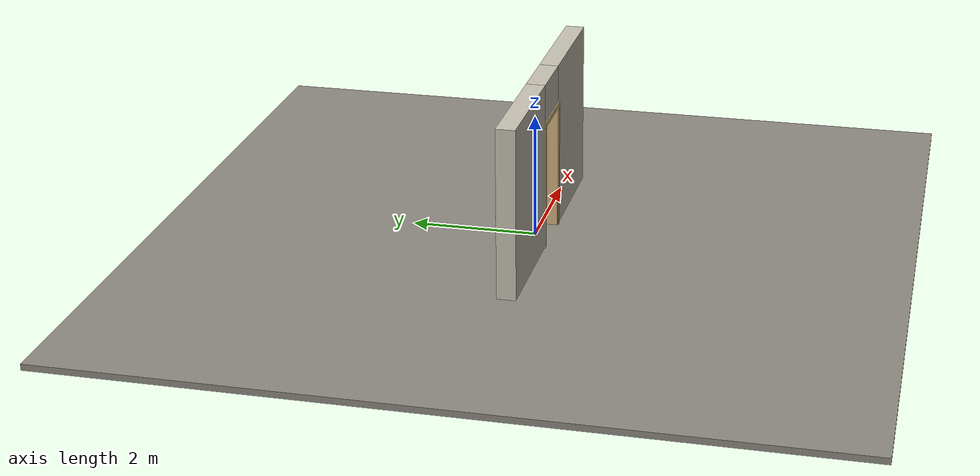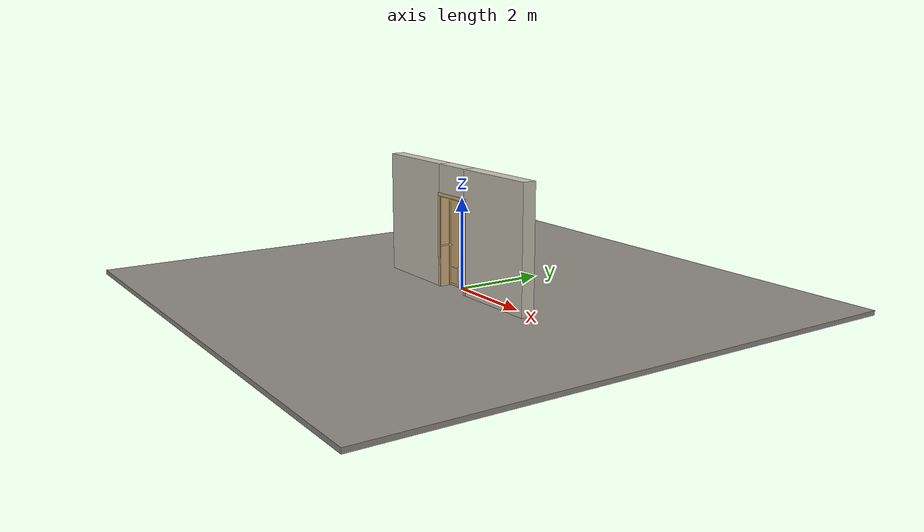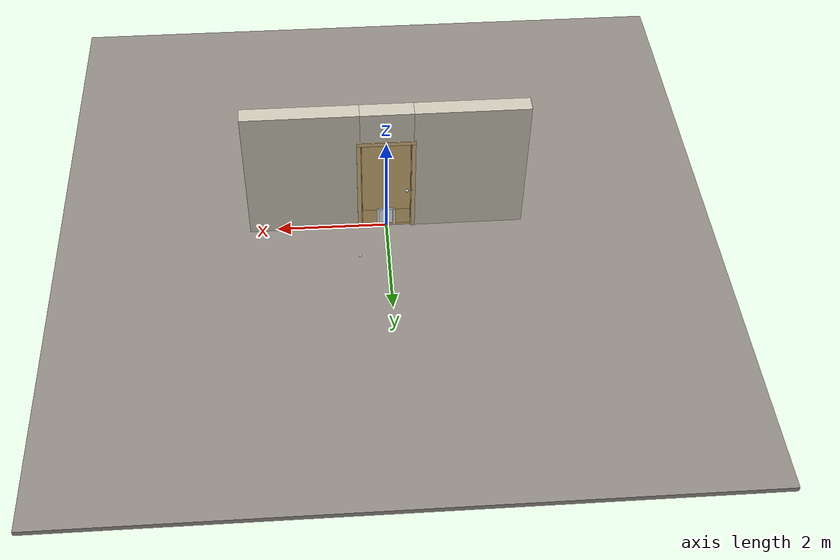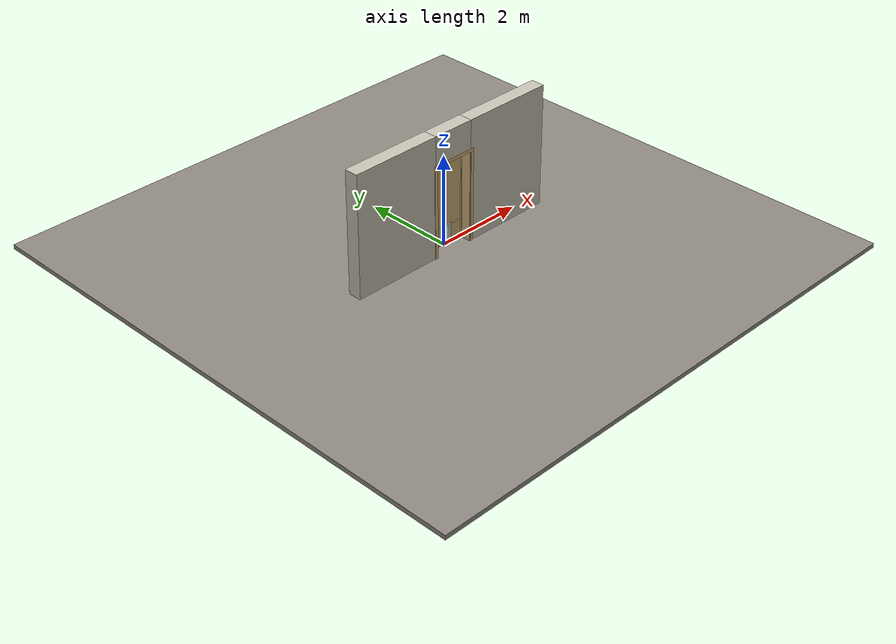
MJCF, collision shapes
<?xml version="1.0" ?>
<mujoco model="db0785_swing_single_full">
  <compiler angle="radian" meshdir="../../hardware" texturedir="../../textures" autolimits="true" inertiafromgeom="false"/>
  <option timestep="0.002" integrator="implicitfast" cone="elliptic" impratio="10" noslip_iterations="3">
    <flag multiccd="enable"/>
  </option>
  <size memory="16M"/>
  <default>
    <geom condim="4" solref="0.005 1" solimp="0.95 0.99 0.001"/>
    <joint solreflimit="0.005 1" solimplimit="0.95 0.99 0.001"/>
    <tendon solreflimit="0.005 1"/>
    <equality solref="0.002 1"/>
  </default>
  <visual>
    <headlight ambient="0.4 0.4 0.4" diffuse="0.7 0.7 0.7" specular="0.2 0.2 0.2"/>
    <quality shadowsize="4096"/>
    <map znear="0.01" zfar="60"/>
  </visual>
  <asset>
    <mesh name="hinge_7678ceaa91" file="hinge_7678ceaa91.obj"/>
    <mesh name="hinge_jamb_24fdb06e8a" file="hinge_jamb_24fdb06e8a.obj"/>
    <mesh name="knob_98a7916ed0" file="knob_98a7916ed0.obj"/>
    <material name="mat_floor" rgba="0.55 0.53 0.5 1" specular="0.2" shininess="0.15" reflectance="0"/>
    <material name="mat_wall" rgba="0.78 0.76 0.7 1" specular="0.2" shininess="0.1" reflectance="0"/>
    <material name="mat_hinge" rgba="0.55 0.56 0.58 1" specular="0.8" shininess="0.55" reflectance="0.4"/>
    <material name="mat_leaf" rgba="0.8 0.68 0.45 1" specular="0.2" shininess="0.5" reflectance="0"/>
    <material name="mat_leaf_louver" rgba="0.68 0.578 0.383 1" specular="0.2" shininess="0.4" reflectance="0"/>
    <material name="mat_op_glass_clear" rgba="0.85 0.92 0.95 0.25" specular="0.2" shininess="0.95" reflectance="0.1"/>
    <material name="mat_trim" rgba="0.85 0.66 0.3 1" specular="0.8" shininess="0.75" reflectance="0.4"/>
    <material name="mat_bolt" rgba="0.85 0.66 0.3 1" specular="0.8" shininess="0.75" reflectance="0.4"/>
    <material name="mat_frame" rgba="0.82 0.7 0.5 1" specular="0.2" shininess="0.45" reflectance="0"/>
    <material name="mat_stop" rgba="0.9 0.9 0.92 1" specular="0.8" shininess="0.9" reflectance="0.4"/>
    <material name="mat_petframe" rgba="0.92 0.92 0.9 1" specular="0.2" shininess="0.6" reflectance="0"/>
    <material name="mat_petflap" rgba="0.9 0.92 0.95 0.3" specular="0.2" shininess="0.9" reflectance="0.1"/>
    <texture name="skybox" type="skybox" builtin="gradient" rgb1="0.6 0.7 0.85" rgb2="0.9 0.92 0.95" width="256" height="256"/>
  </asset>
  <worldbody>
    <light name="sun" pos="1.5 -2.5 4" dir="-0.3 0.5 -0.8" directional="true" diffuse="0.8 0.8 0.8" specular="0.3 0.3 0.3" castshadow="true"/>
    <light name="fill" pos="-1.5 2.5 3" dir="0.3 -0.5 -0.7" directional="true" diffuse="0.35 0.35 0.4" castshadow="false"/>
    <camera name="robot_view" pos="0 -2.619125 1.698475" xyaxes="1 0 0 0 0.26963 0.962964" fovy="52"/>
    <camera name="far_view" pos="0 2.377125 1.698475" xyaxes="-1 0 0 0 -0.26963 0.962964" fovy="52"/>
    <camera name="iso" pos="-1.898575 -2.219425 2.098175" xyaxes="0.741536 -0.670913 0 0.242917 0.268487 0.932151" fovy="46"/>
    <camera name="detail_handle" pos="-0.191 -0.867 1.194" xyaxes="0.97561 0.219512 0 -0.070934 0.315262 0.94635" fovy="38"/>
    <geom name="floor" type="box" size="6 6 0.05" pos="0 0 -0.05" material="mat_floor" group="0" contype="1" conaffinity="1" friction="0.8 0.005 0.0001" density="2400"/>
    <geom name="wall_left" type="box" size="1.0075 0.15 1.35" pos="-1.4925 -0.121 1.35" material="mat_wall" group="0" contype="1" conaffinity="1" friction="0.6 0.005 0.0001" density="800"/>
    <geom name="wall_right" type="box" size="1.0225 0.15 1.35" pos="1.4775 -0.121 1.35" material="mat_wall" group="0" contype="1" conaffinity="1" friction="0.6 0.005 0.0001" density="800"/>
    <geom name="wall_header" type="box" size="0.47 0.15 0.3265" pos="-0.015 -0.121 2.3735" material="mat_wall" group="0" contype="1" conaffinity="1" friction="0.6 0.005 0.0001" density="800"/>
    <geom name="hinge_0_jamb" type="mesh" mesh="hinge_jamb_24fdb06e8a" pos="0.433 0.029 0.259" quat="0 0 0 1" material="mat_hinge" group="1" contype="0" conaffinity="0" density="7850"/>
    <geom name="hinge_1_jamb" type="mesh" mesh="hinge_jamb_24fdb06e8a" pos="0.433 0.029 0.9963" quat="0 0 0 1" material="mat_hinge" group="1" contype="0" conaffinity="0" density="7850"/>
    <geom name="hinge_2_jamb" type="mesh" mesh="hinge_jamb_24fdb06e8a" pos="0.433 0.029 1.8036" quat="0 0 0 1" material="mat_hinge" group="1" contype="0" conaffinity="0" density="7850"/>
    <geom name="jamb_hinge" type="box" size="0.0095 0.15 0.999" pos="0.4455 -0.121 0.999" material="mat_frame" group="0" contype="1" conaffinity="1" friction="0.6 0.005 0.0001" density="400"/>
    <geom name="strike_914_wall_n" type="box" size="0.0245 0.131575 0.0167" pos="-0.4605 -0.139425 0.914" material="mat_frame" group="0" contype="1" conaffinity="1" friction="0.6 0.005 0.0001" density="400"/>
    <geom name="strike_914_wall_p" type="box" size="0.0245 0.008 0.0167" pos="-0.4605 0.01585 0.914" material="mat_frame" group="0" contype="1" conaffinity="1" friction="0.6 0.005 0.0001" density="400"/>
    <geom name="strike_914_ramp" type="box" size="0.0245 0.01649 0.0167" pos="-0.465136 0.028673 0.914" quat="0.977148 0 0 0.212558" material="mat_frame" group="0" contype="1" conaffinity="1" friction="0.12 0.005 0.0001" density="400"/>
    <geom name="strike_914_back" type="box" size="0.01615 0.00785 0.0167" pos="-0.46885 0 0.914" material="mat_frame" group="0" contype="1" conaffinity="1" friction="0.6 0.005 0.0001" density="400"/>
    <geom name="jamb_strike_0" type="box" size="0.0245 0.15 0.44865" pos="-0.4605 -0.121 0.44865" material="mat_frame" group="0" contype="1" conaffinity="1" friction="0.6 0.005 0.0001" density="400"/>
    <geom name="jamb_strike_1" type="box" size="0.0245 0.15 0.53365" pos="-0.4605 -0.121 1.46435" material="mat_frame" group="0" contype="1" conaffinity="1" friction="0.6 0.005 0.0001" density="400"/>
    <geom name="jamb_head" type="box" size="0.47 0.15 0.0095" pos="-0.015 -0.121 2.0075" material="mat_frame" group="0" contype="1" conaffinity="1" friction="0.6 0.005 0.0001" density="400"/>
    <geom name="head_stud" type="box" size="0.47 0.15 0.015" pos="-0.015 -0.121 2.032" material="mat_wall" group="0" contype="1" conaffinity="1" friction="0.6 0.005 0.0001" density="500"/>
    <geom name="stop_hinge" type="box" size="0.0055 0.016 0.999" pos="0.4305 -0.0385 0.999" material="mat_frame" group="0" contype="1" conaffinity="1" friction="0.6 0.005 0.0001" density="400"/>
    <geom name="stop_strike" type="box" size="0.0055 0.016 0.999" pos="-0.4305 -0.0385 0.999" material="mat_frame" group="0" contype="1" conaffinity="1" friction="0.6 0.005 0.0001" density="400"/>
    <geom name="stop_head" type="box" size="0.436 0.016 0.0055" pos="0 -0.0385 1.9925" material="mat_frame" group="0" contype="1" conaffinity="1" friction="0.6 0.005 0.0001" density="400"/>
    <geom name="casing_l_n" type="box" size="0.035 0.008 1.0085" pos="-0.485 -0.279 0.999" material="mat_frame" group="2" contype="0" conaffinity="0" density="400"/>
    <geom name="casing_r_n" type="box" size="0.035 0.008 1.0085" pos="0.485 -0.279 0.999" material="mat_frame" group="2" contype="0" conaffinity="0" density="400"/>
    <geom name="casing_h_n" type="box" size="0.52 0.008 0.035" pos="0 -0.279 2.047" material="mat_frame" group="2" contype="0" conaffinity="0" density="400"/>
    <geom name="casing_l_p" type="box" size="0.035 0.008 1.0085" pos="-0.485 0.037 0.999" material="mat_frame" group="2" contype="0" conaffinity="0" density="400"/>
    <geom name="casing_r_p" type="box" size="0.035 0.008 1.0085" pos="0.485 0.037 0.999" material="mat_frame" group="2" contype="0" conaffinity="0" density="400"/>
    <geom name="casing_h_p" type="box" size="0.52 0.008 0.035" pos="0 0.037 2.047" material="mat_frame" group="2" contype="0" conaffinity="0" density="400"/>
    <geom name="floor_stop_dome" type="sphere" size="0.025" pos="0.516931 0.758862 0" material="mat_stop" group="0" contype="1" conaffinity="1" friction="0.6 0.005 0.0001" density="7000"/>
    <site name="approach_point" pos="0 -1.5 0" quat="1 0 0 0" size="0.05" rgba="0.2 0.9 0.2 0.5" group="4"/>
    <site name="goal_point" pos="0 1.5 0" quat="1 0 0 0" size="0.05" rgba="0.2 0.9 0.2 0.5" group="4"/>
    <site name="door_plane_center" pos="0 0 0.999" quat="1 0 0 0" size="0.02" rgba="0.2 0.9 0.2 0.5" group="4"/>
    <body name="leaf_riser" pos="0.436 0 0">
      <inertial pos="-0.003 0.029 0.055" mass="0.174012" quat="-0.5 0.5 0.5 0.5" diaginertia="0.000017053 0.00002732 0.00002732"/>
      <joint name="leaf_rise" type="slide" axis="0 0 1" limited="true" range="0 0.0176" damping="1" armature="0.5"/>
      <geom name="leaf_riser_marker" type="cylinder" size="0.014 0.018" pos="-0.003 0.029 0.055" material="mat_hinge" group="1" contype="0" conaffinity="0" density="7850"/>
      <body name="leaf" pos="0 0 0">
        <inertial pos="-0.430464 0.000215 0.996086" mass="54.353505" quat="0.499758 0.500469 -0.499523 0.500249" diaginertia="3.488268714 17.554478952 21.024120237"/>
        <joint name="leaf_hinge" type="hinge" axis="0 0 -1" pos="-0.003 0.029 0" limited="true" range="0 1.658063" damping="0.249771" frictionloss="0.838026" armature="0.02"/>
        <geom name="leaf_slab_below" type="box" size="0.432 0.022 0.0245" pos="-0.435 0 0.0335" material="mat_leaf" group="0" contype="1" conaffinity="1" friction="0.35 0.005 0.0001" density="1"/>
        <geom name="leaf_slab_above" type="box" size="0.432 0.022 0.7818" pos="-0.435 0 1.2018" material="mat_leaf" group="0" contype="1" conaffinity="1" friction="0.35 0.005 0.0001" density="1"/>
        <geom name="leaf_slab_left" type="box" size="0.153 0.022 0.181" pos="-0.714 0 0.239" material="mat_leaf" group="0" contype="1" conaffinity="1" friction="0.35 0.005 0.0001" density="1"/>
        <geom name="leaf_slab_right" type="box" size="0.153 0.022 0.181" pos="-0.156 0 0.239" material="mat_leaf" group="0" contype="1" conaffinity="1" friction="0.35 0.005 0.0001" density="1"/>
        <geom name="leaf_louver_4" type="box" size="0.33696 0.002 0.026388" pos="-0.435 0 0.452387" quat="0.953717 0.300706 0 0" material="mat_leaf_louver" group="1" contype="0" conaffinity="0" density="1"/>
        <geom name="leaf_louver_5" type="box" size="0.33696 0.002 0.026388" pos="-0.435 0 0.50265" quat="0.953717 0.300706 0 0" material="mat_leaf_louver" group="1" contype="0" conaffinity="0" density="1"/>
        <geom name="leaf_louver_6" type="box" size="0.33696 0.002 0.026388" pos="-0.435 0 0.552913" quat="0.953717 0.300706 0 0" material="mat_leaf_louver" group="1" contype="0" conaffinity="0" density="1"/>
        <geom name="leaf_louver_7" type="box" size="0.33696 0.002 0.026388" pos="-0.435 0 0.603175" quat="0.953717 0.300706 0 0" material="mat_leaf_louver" group="1" contype="0" conaffinity="0" density="1"/>
        <geom name="leaf_louver_8" type="box" size="0.33696 0.002 0.026388" pos="-0.435 0 0.653438" quat="0.953717 0.300706 0 0" material="mat_leaf_louver" group="1" contype="0" conaffinity="0" density="1"/>
        <geom name="leaf_louver_9" type="box" size="0.33696 0.002 0.026388" pos="-0.435 0 0.7037" quat="0.953717 0.300706 0 0" material="mat_leaf_louver" group="1" contype="0" conaffinity="0" density="1"/>
        <geom name="leaf_louver_10" type="box" size="0.33696 0.002 0.026388" pos="-0.435 0 0.753963" quat="0.953717 0.300706 0 0" material="mat_leaf_louver" group="1" contype="0" conaffinity="0" density="1"/>
        <geom name="leaf_louver_11" type="box" size="0.33696 0.002 0.026388" pos="-0.435 0 0.804225" quat="0.953717 0.300706 0 0" material="mat_leaf_louver" group="1" contype="0" conaffinity="0" density="1"/>
        <geom name="leaf_louver_12" type="box" size="0.33696 0.002 0.026388" pos="-0.435 0 0.854488" quat="0.953717 0.300706 0 0" material="mat_leaf_louver" group="1" contype="0" conaffinity="0" density="1"/>
        <geom name="leaf_louver_13" type="box" size="0.33696 0.002 0.026388" pos="-0.435 0 0.90475" quat="0.953717 0.300706 0 0" material="mat_leaf_louver" group="1" contype="0" conaffinity="0" density="1"/>
        <geom name="leaf_louver_14" type="box" size="0.33696 0.002 0.026388" pos="-0.435 0 0.955013" quat="0.953717 0.300706 0 0" material="mat_leaf_louver" group="1" contype="0" conaffinity="0" density="1"/>
        <geom name="leaf_louver_15" type="box" size="0.33696 0.002 0.026388" pos="-0.435 0 1.005275" quat="0.953717 0.300706 0 0" material="mat_leaf_louver" group="1" contype="0" conaffinity="0" density="1"/>
        <geom name="leaf_louver_16" type="box" size="0.33696 0.002 0.026388" pos="-0.435 0 1.055538" quat="0.953717 0.300706 0 0" material="mat_leaf_louver" group="1" contype="0" conaffinity="0" density="1"/>
        <geom name="leaf_louver_17" type="box" size="0.33696 0.002 0.026388" pos="-0.435 0 1.105801" quat="0.953717 0.300706 0 0" material="mat_leaf_louver" group="1" contype="0" conaffinity="0" density="1"/>
        <geom name="leaf_louver_18" type="box" size="0.33696 0.002 0.026388" pos="-0.435 0 1.156063" quat="0.953717 0.300706 0 0" material="mat_leaf_louver" group="1" contype="0" conaffinity="0" density="1"/>
        <geom name="leaf_louver_19" type="box" size="0.33696 0.002 0.026388" pos="-0.435 0 1.206326" quat="0.953717 0.300706 0 0" material="mat_leaf_louver" group="1" contype="0" conaffinity="0" density="1"/>
        <geom name="leaf_louver_20" type="box" size="0.33696 0.002 0.026388" pos="-0.435 0 1.256588" quat="0.953717 0.300706 0 0" material="mat_leaf_louver" group="1" contype="0" conaffinity="0" density="1"/>
        <geom name="leaf_louver_21" type="box" size="0.33696 0.002 0.026388" pos="-0.435 0 1.306851" quat="0.953717 0.300706 0 0" material="mat_leaf_louver" group="1" contype="0" conaffinity="0" density="1"/>
        <geom name="leaf_louver_22" type="box" size="0.33696 0.002 0.026388" pos="-0.435 0 1.357113" quat="0.953717 0.300706 0 0" material="mat_leaf_louver" group="1" contype="0" conaffinity="0" density="1"/>
        <geom name="leaf_louver_23" type="box" size="0.33696 0.002 0.026388" pos="-0.435 0 1.407376" quat="0.953717 0.300706 0 0" material="mat_leaf_louver" group="1" contype="0" conaffinity="0" density="1"/>
        <geom name="leaf_louver_24" type="box" size="0.33696 0.002 0.026388" pos="-0.435 0 1.457638" quat="0.953717 0.300706 0 0" material="mat_leaf_louver" group="1" contype="0" conaffinity="0" density="1"/>
        <geom name="leaf_louver_25" type="box" size="0.33696 0.002 0.026388" pos="-0.435 0 1.507901" quat="0.953717 0.300706 0 0" material="mat_leaf_louver" group="1" contype="0" conaffinity="0" density="1"/>
        <geom name="leaf_louver_26" type="box" size="0.33696 0.002 0.026388" pos="-0.435 0 1.558163" quat="0.953717 0.300706 0 0" material="mat_leaf_louver" group="1" contype="0" conaffinity="0" density="1"/>
        <geom name="leaf_louver_27" type="box" size="0.33696 0.002 0.026388" pos="-0.435 0 1.608426" quat="0.953717 0.300706 0 0" material="mat_leaf_louver" group="1" contype="0" conaffinity="0" density="1"/>
        <geom name="leaf_louver_28" type="box" size="0.33696 0.002 0.026388" pos="-0.435 0 1.658689" quat="0.953717 0.300706 0 0" material="mat_leaf_louver" group="1" contype="0" conaffinity="0" density="1"/>
        <geom name="leaf_louver_29" type="box" size="0.33696 0.002 0.026388" pos="-0.435 0 1.708951" quat="0.953717 0.300706 0 0" material="mat_leaf_louver" group="1" contype="0" conaffinity="0" density="1"/>
        <geom name="leaf_louver_30" type="box" size="0.33696 0.002 0.026388" pos="-0.435 0 1.759214" quat="0.953717 0.300706 0 0" material="mat_leaf_louver" group="1" contype="0" conaffinity="0" density="1"/>
        <geom name="leaf_louver_31" type="box" size="0.33696 0.002 0.026388" pos="-0.435 0 1.809476" quat="0.953717 0.300706 0 0" material="mat_leaf_louver" group="1" contype="0" conaffinity="0" density="1"/>
        <geom name="leaf_louver_32" type="box" size="0.33696 0.002 0.026388" pos="-0.435 0 1.859739" quat="0.953717 0.300706 0 0" material="mat_leaf_louver" group="1" contype="0" conaffinity="0" density="1"/>
        <geom name="hinge_0" type="mesh" mesh="hinge_7678ceaa91" pos="-0.003 0.029 0.259" quat="0 0 0 1" material="mat_hinge" group="1" contype="0" conaffinity="0" density="7850"/>
        <geom name="hinge_1" type="mesh" mesh="hinge_7678ceaa91" pos="-0.003 0.029 0.9963" quat="0 0 0 1" material="mat_hinge" group="1" contype="0" conaffinity="0" density="7850"/>
        <geom name="hinge_2" type="mesh" mesh="hinge_7678ceaa91" pos="-0.003 0.029 1.8036" quat="0 0 0 1" material="mat_hinge" group="1" contype="0" conaffinity="0" density="7850"/>
        <geom name="leaf_latch_bolt_faceplate" type="box" size="0.0006 0.01235 0.0267" pos="-0.8664 0 0.914" material="mat_bolt" group="1" contype="0" conaffinity="0" density="8500"/>
        <geom name="pet_frame_top" type="box" size="0.165 0.028 0.02" pos="-0.435 0 0.439" material="mat_petframe" group="2" contype="0" conaffinity="0" density="1200"/>
        <geom name="pet_frame_l" type="box" size="0.02 0.028 0.22" pos="-0.58 0 0.239" material="mat_petframe" group="2" contype="0" conaffinity="0" density="1200"/>
        <geom name="pet_frame_r" type="box" size="0.02 0.028 0.22" pos="-0.29 0 0.239" material="mat_petframe" group="2" contype="0" conaffinity="0" density="1200"/>
        <site name="leaf_edge_mid" pos="-0.867 0 0.9873" quat="1 0 0 0" size="0.02" rgba="0.2 0.9 0.2 0.5" group="4"/>
        <body name="leaf_handle" pos="-0.807 0 0.914">
          <inertial pos="0 0.000524 0" mass="0.977375" quat="0.5 0.5 0.5 0.5" diaginertia="0.000215385 0.003503497 0.003503497"/>
          <joint name="leaf_handle_hinge" type="hinge" axis="0 1 0" limited="true" range="0 0.8" damping="0.119589" frictionloss="0.032" stiffness="0.35" springref="-0.428571" armature="0.01"/>
          <geom name="leaf_handle_spindle" type="cylinder" size="0.006 0.03" pos="0 0 0" quat="0.707107 -0.707107 0 0" material="mat_op_glass_clear" group="1" contype="0" conaffinity="0" density="7850"/>
          <geom name="leaf_handle_knob_n" type="mesh" mesh="knob_98a7916ed0" pos="0 -0.022 0" quat="0 0 -0.707107 0.707107" material="mat_op_glass_clear" group="1" contype="0" conaffinity="0" density="3000"/>
          <geom name="leaf_handle_knob_col_n" type="sphere" size="0.0234" pos="0 -0.067 0" material="mat_op_glass_clear" group="0" contype="1" conaffinity="1" friction="0.9 0.01 0.0001" density="3000"/>
          <geom name="leaf_handle_knob_neck_n" type="cylinder" size="0.011 0.012" pos="0 -0.034 0" quat="0.707107 -0.707107 0 0" material="mat_op_glass_clear" group="3" contype="1" conaffinity="1" rgba="0.8 0.3 0.3 0.25" friction="0.6 0.005 0.0001" density="3000"/>
          <geom name="leaf_handle_knob_p" type="mesh" mesh="knob_98a7916ed0" pos="0 0.022 0" quat="0 0 0.707107 0.707107" material="mat_op_glass_clear" group="1" contype="0" conaffinity="0" density="3000"/>
          <geom name="leaf_handle_knob_col_p" type="sphere" size="0.0234" pos="0 0.067 0" material="mat_op_glass_clear" group="0" contype="1" conaffinity="1" friction="0.9 0.01 0.0001" density="3000"/>
          <geom name="leaf_handle_knob_neck_p" type="cylinder" size="0.011 0.012" pos="0 0.034 0" quat="0.707107 -0.707107 0 0" material="mat_op_glass_clear" group="3" contype="1" conaffinity="1" rgba="0.8 0.3 0.3 0.25" friction="0.6 0.005 0.0001" density="3000"/>
          <geom name="leaf_handle_turn_button_p" type="cylinder" size="0.005 0.005" pos="0 0.0918 0" quat="0.707107 -0.707107 0 0" material="mat_trim" group="1" contype="0" conaffinity="0" density="7100"/>
          <site name="leaf_handle_grip_n" pos="0 -0.067 0" quat="1 0 0 0" size="0.012" rgba="0.2 0.9 0.2 0.5" group="4"/>
          <site name="leaf_handle_grip_p" pos="0 0.067 0" quat="1 0 0 0" size="0.012" rgba="0.2 0.9 0.2 0.5" group="4"/>
        </body>
        <body name="leaf_latch_bolt" pos="-0.867 0 0.914">
          <inertial pos="0.00865 0 0" mass="0.041419" quat="0.92388 0.382683 0 0" diaginertia="0.000000798 0.000005598 0.000005598"/>
          <joint name="leaf_latch_bolt_slide" type="slide" axis="1 0 0" limited="true" range="0 0.0127" damping="2" frictionloss="0.3" stiffness="300" springref="-0.008333" armature="0.1"/>
          <geom name="leaf_latch_bolt_capsule" type="capsule" size="0.00635 0.015" pos="0.00865 0 0" quat="0.707107 0 -0.707107 0" material="mat_bolt" group="0" contype="1" conaffinity="1" friction="0.2 0.005 0.0001" density="8500"/>
        </body>
        <body name="pet_flap" pos="-0.435 0 0.419">
          <inertial pos="0 0 -0.18" mass="0.296921" quat="-0.5 0.5 0.5 0.5" diaginertia="0.001449692 0.003066427 0.004514882"/>
          <joint name="pet_flap_hinge" type="hinge" axis="-1 0 0" limited="true" range="-1.45 1.45" damping="0.02" frictionloss="0.02" armature="0.005"/>
          <geom name="pet_flap_geom" type="box" size="0.121 0.0025 0.176" pos="0 0 -0.18" material="mat_petflap" group="0" contype="1" conaffinity="1" friction="0.6 0.005 0.0001" density="1180"/>
        </body>
      </body>
    </body>
  </worldbody>
  <tendon>
    <fixed name="leaf_latch_bolt_coupling" limited="true" range="0 10">
      <joint joint="leaf_latch_bolt_slide" coef="1"/>
      <joint joint="leaf_handle_hinge" coef="-0.019538"/>
    </fixed>
  </tendon>
  <equality>
    <joint name="leaf_rise_couple" joint1="leaf_rise" joint2="leaf_hinge" polycoef="0 0.005093 0 0 0" active="true"/>
  </equality>
  <sensor>
    <jointpos name="leaf_hinge_pos" joint="leaf_hinge"/>
    <jointvel name="leaf_hinge_vel" joint="leaf_hinge"/>
    <jointpos name="leaf_handle_hinge_pos" joint="leaf_handle_hinge"/>
    <jointvel name="leaf_handle_hinge_vel" joint="leaf_handle_hinge"/>
    <jointpos name="leaf_latch_bolt_slide_pos" joint="leaf_latch_bolt_slide"/>
    <jointvel name="leaf_latch_bolt_slide_vel" joint="leaf_latch_bolt_slide"/>
    <jointpos name="pet_flap_hinge_pos" joint="pet_flap_hinge"/>
    <jointvel name="pet_flap_hinge_vel" joint="pet_flap_hinge"/>
  </sensor>
</mujoco>
